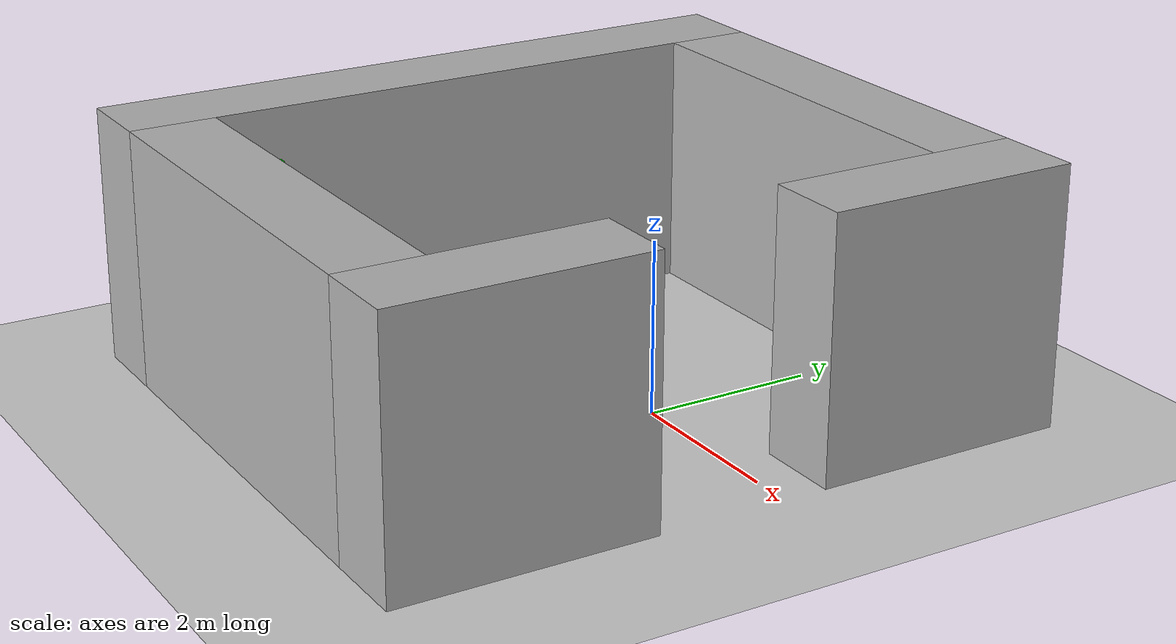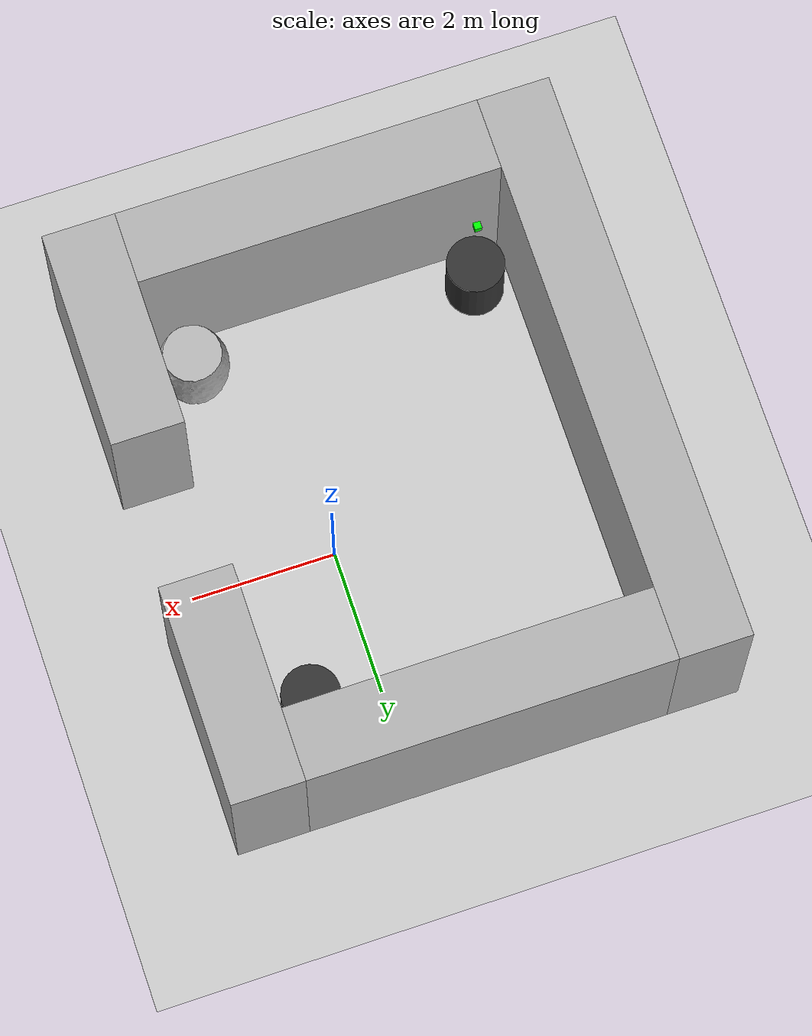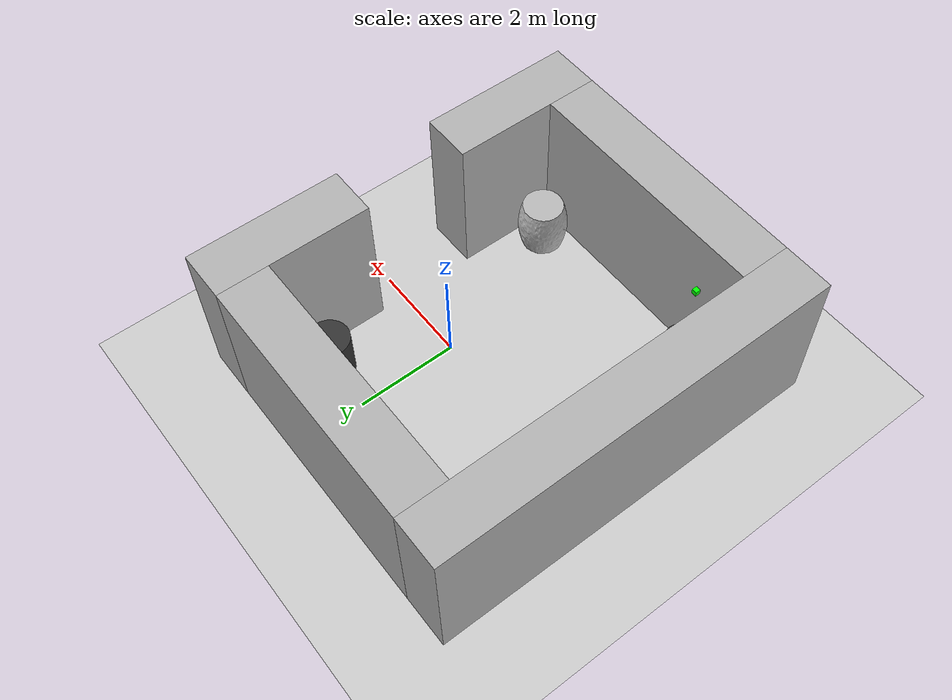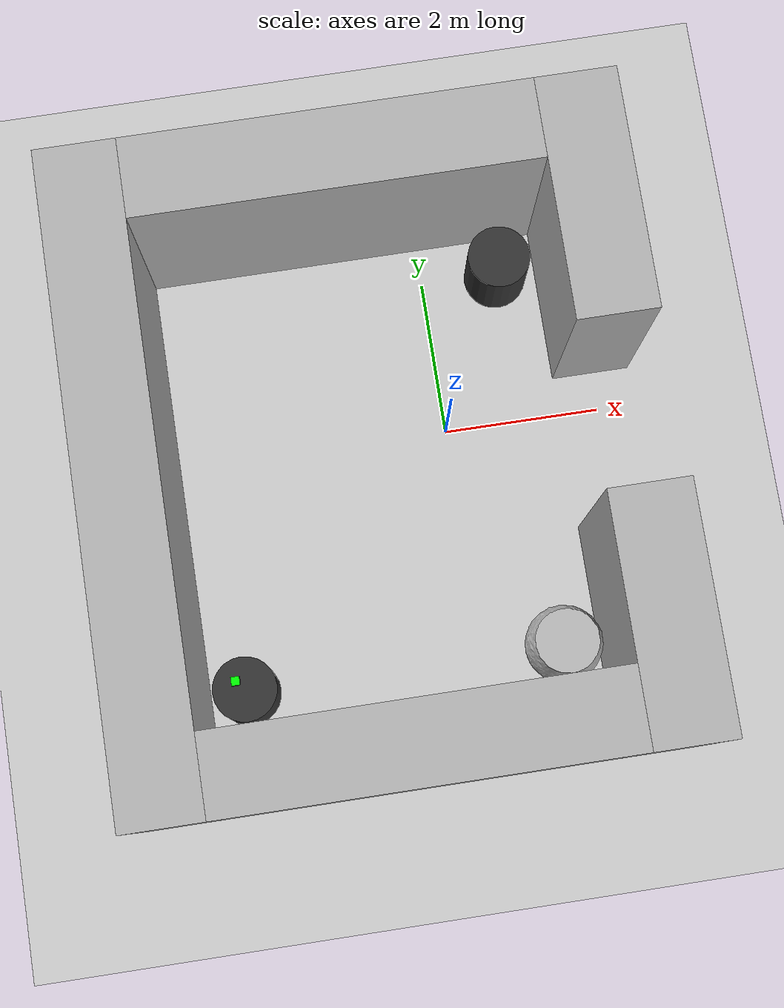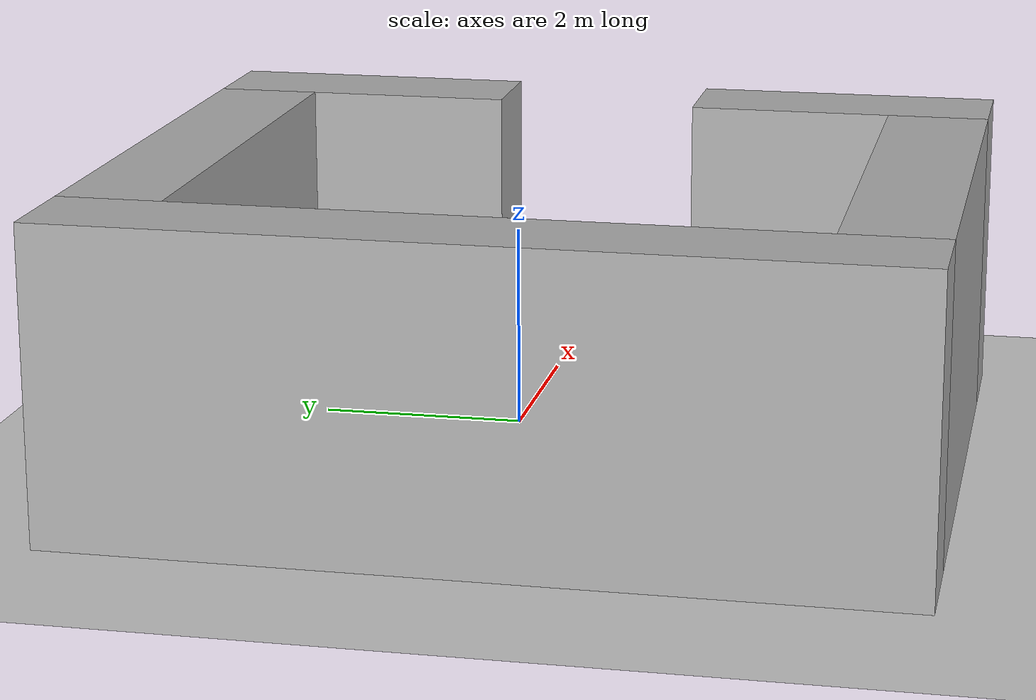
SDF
<sdf version="1.6">
 <world name="default">
  <light name="sun" type="directional">
   <cast_shadows>0</cast_shadows>
   <pose>0 0 10 0 -0 0</pose>
   <diffuse>0.8 0.8 0.8 1</diffuse>
   <specular>0.2 0.2 0.2 1</specular>
   <attenuation>
    <range>1000</range>
    <constant>0.9</constant>
    <linear>0.01</linear>
    <quadratic>0.001</quadratic>
   </attenuation>
   <direction>-0.5 0.1 -0.9</direction>
  </light>
  <include><uri>model://ground_plane</uri></include>
  <gravity>0 0 -9.8</gravity>
  <magnetic_field>6e-06 2.3e-05 -4.2e-05</magnetic_field>
  <atmosphere type="adiabatic"/>
  <physics default="0" name="default_physics" type="ode">
   <max_step_size>0.001</max_step_size>
   <real_time_factor>1</real_time_factor>
   <real_time_update_rate>1000</real_time_update_rate>
  </physics>
  <scene><ambient>0.4 0.4 0.4 1</ambient><background>0.7 0.7 0.7 1</background><shadows>0</shadows></scene>
  <spherical_coordinates>
   <surface_model>EARTH_WGS84</surface_model>
   <latitude_deg>0</latitude_deg>
   <longitude_deg>0</longitude_deg>
   <elevation>0</elevation>
   <heading_deg>0</heading_deg>
  </spherical_coordinates>
  <model name="wall_0">
   <pose frame="sim_world">-4.0 -0.5 1.5 0 0 0</pose>
   <static>True</static>
   <link name="wall_0_link">
    <inertial>
     <mass>100</mass>
     <inertia>
      <ixx>0.166667</ixx>
      <ixy>0</ixy>
      <ixz>0</ixz>
      <iyy>0.166667</iyy>
      <iyz>0</iyz>
      <izz>0.166667</izz>
     </inertia>
    </inertial>
    <collision name="wall_0_collision">
     <geometry><box><size>1.0 8.0 3.0</size></box></geometry>
     <max_contacts>100</max_contacts>
    </collision>
    <visual name="wall_0_visual">
     <geometry><box><size>1.0 8.0 3.0</size></box></geometry>
     <material><ambient>0.7 0.7 0.7 1</ambient><diffuse>0.7 0.7 0.7 1</diffuse></material>
    </visual>
   </link>
  </model>
  <model name="wall_1">
   <pose frame="sim_world">2.0 -3.0 1.5 0 0 0</pose>
   <static>True</static>
   <link name="wall_1_link">
    <inertial>
     <mass>100</mass>
     <inertia>
      <ixx>0.166667</ixx>
      <ixy>0</ixy>
      <ixz>0</ixz>
      <iyy>0.166667</iyy>
      <iyz>0</iyz>
      <izz>0.166667</izz>
     </inertia>
    </inertial>
    <collision name="wall_1_collision">
     <geometry><box><size>1.0 3.0 3.0</size></box></geometry>
     <max_contacts>100</max_contacts>
    </collision>
    <visual name="wall_1_visual">
     <geometry><box><size>1.0 3.0 3.0</size></box></geometry>
     <material><ambient>0.7 0.7 0.7 1</ambient><diffuse>0.7 0.7 0.7 1</diffuse></material>
    </visual>
   </link>
  </model>
  <model name="wall_2">
   <pose frame="sim_world">2.0 2.0 1.5 0 0 0</pose>
   <static>True</static>
   <link name="wall_2_link">
    <inertial>
     <mass>100</mass>
     <inertia>
      <ixx>0.166667</ixx>
      <ixy>0</ixy>
      <ixz>0</ixz>
      <iyy>0.166667</iyy>
      <iyz>0</iyz>
      <izz>0.166667</izz>
     </inertia>
    </inertial>
    <collision name="wall_2_collision">
     <geometry><box><size>1.0 3.0 3.0</size></box></geometry>
     <max_contacts>100</max_contacts>
    </collision>
    <visual name="wall_2_visual">
     <geometry><box><size>1.0 3.0 3.0</size></box></geometry>
     <material><ambient>0.7 0.7 0.7 1</ambient><diffuse>0.7 0.7 0.7 1</diffuse></material>
    </visual>
   </link>
  </model>
  <model name="wall_3">
   <pose frame="sim_world">-1.0 -4.0 1.5 0 0 0</pose>
   <static>True</static>
   <link name="wall_3_link">
    <inertial>
     <mass>100</mass>
     <inertia>
      <ixx>0.166667</ixx>
      <ixy>0</ixy>
      <ixz>0</ixz>
      <iyy>0.166667</iyy>
      <iyz>0</iyz>
      <izz>0.166667</izz>
     </inertia>
    </inertial>
    <collision name="wall_3_collision">
     <geometry><box><size>5.0 1.0 3.0</size></box></geometry>
     <max_contacts>100</max_contacts>
    </collision>
    <visual name="wall_3_visual">
     <geometry><box><size>5.0 1.0 3.0</size></box></geometry>
     <material><ambient>0.7 0.7 0.7 1</ambient><diffuse>0.7 0.7 0.7 1</diffuse></material>
    </visual>
   </link>
  </model>
  <model name="wall_4">
   <pose frame="sim_world">-1.0 3.0 1.5 0 0 0</pose>
   <static>True</static>
   <link name="wall_4_link">
    <inertial>
     <mass>100</mass>
     <inertia>
      <ixx>0.166667</ixx>
      <ixy>0</ixy>
      <ixz>0</ixz>
      <iyy>0.166667</iyy>
      <iyz>0</iyz>
      <izz>0.166667</izz>
     </inertia>
    </inertial>
    <collision name="wall_4_collision">
     <geometry><box><size>5.0 1.0 3.0</size></box></geometry>
     <max_contacts>100</max_contacts>
    </collision>
    <visual name="wall_4_visual">
     <geometry><box><size>5.0 1.0 3.0</size></box></geometry>
     <material><ambient>0.7 0.7 0.7 1</ambient><diffuse>0.7 0.7 0.7 1</diffuse></material>
    </visual>
   </link>
  </model>
  <model name="cylinder_0">
   <pose frame="sim_world">-3.00252751309 -2.98705220142 0.5 0 -0 0</pose>
   <static>True</static>
   <link name="cylinder_0_link">
    <inertial>
     <mass>100</mass>
     <inertia><ixx>0.145833</ixx><ixy>0</ixy><ixz>0</ixz><iyy>0.145833</iyy><iyz>0</iyz><izz>0.125</izz></inertia>
    </inertial>
    <collision name="cylinder_0_collision">
     <geometry><cylinder><length>1.0</length><radius>0.4</radius></cylinder></geometry>
     <max_contacts>100</max_contacts>
    </collision>
    <visual name="cylinder_0_visual">
     <geometry><cylinder><length>1.0</length><radius>0.4</radius></cylinder></geometry>
     <material><ambient>0.2 0.2 0.2 1</ambient><diffuse>0.2 0.2 0.2 1</diffuse></material>
    </visual>
   </link>
   <model name="radiation_source_cylinder_0">
    <static>true</static>
    <link name="link_radiation_source_cylinder_0">
     <visual name="visual_radiation_source_cylinder_0_0">
      <geometry><box><size>0.1 0.1 0.1</size></box></geometry>
      <material><ambient>1 0.0  0 1.0</ambient><diffuse>1 0.0  0 1.0</diffuse></material>
     </visual>
     <visual name="visual_radiation_source_cylinder_0_1">
      <pose>0 0 2.0 0 0 0</pose>
      <geometry><box><size>0.1 0.1 0.1</size></box></geometry>
      <material><ambient>0 1.0  0 1.0</ambient><diffuse>0 1.0  0 1.0</diffuse></material>
     </visual>
     <sensor name="radiation_source_cylinder_0" type="radiation_source">
      <always_on>1</always_on>
      <update_rate>100.0</update_rate>
      <topic>source_1/gamma</topic>
      <plugin filename="libradiation_source_plugin.so" name="radiation_source_plugin"/>
     </sensor>
    </link>
   </model>
  </model>
  <model name="cylinder_1">
   <pose frame="sim_world">0.965288527287 1.96396900252 0.5 0 -0 0</pose>
   <static>True</static>
   <link name="cylinder_1_link">
    <inertial>
     <mass>100</mass>
     <inertia><ixx>0.145833</ixx><ixy>0</ixy><ixz>0</ixz><iyy>0.145833</iyy><iyz>0</iyz><izz>0.125</izz></inertia>
    </inertial>
    <collision name="cylinder_1_collision">
     <geometry><cylinder><length>1.0</length><radius>0.4</radius></cylinder></geometry>
     <max_contacts>100</max_contacts>
    </collision>
    <visual name="cylinder_1_visual">
     <geometry><cylinder><length>1.0</length><radius>0.4</radius></cylinder></geometry>
     <material><ambient>0.2 0.2 0.2 1</ambient><diffuse>0.2 0.2 0.2 1</diffuse></material>
    </visual>
   </link>
  </model>
  <model name="barrel_1">
   <pose>1.00307867049 -2.99673562461 0.5 0 -0 0</pose>
   <static>true</static>
   <link name="link_barrel_1">
    <collision name="collision_barrel_1">
     <geometry><mesh><uri>model://challenge1/models/barrel_1.dae</uri></mesh></geometry>
    </collision>
    <visual name="visual_barrel_1">
     <geometry><mesh><uri>model://challenge1/models/barrel_1.dae</uri></mesh></geometry>
    </visual>
   </link>
  </model>
  <model name="ground_plane"><link name="ground_plane"/></model>
 </world>
</sdf>
